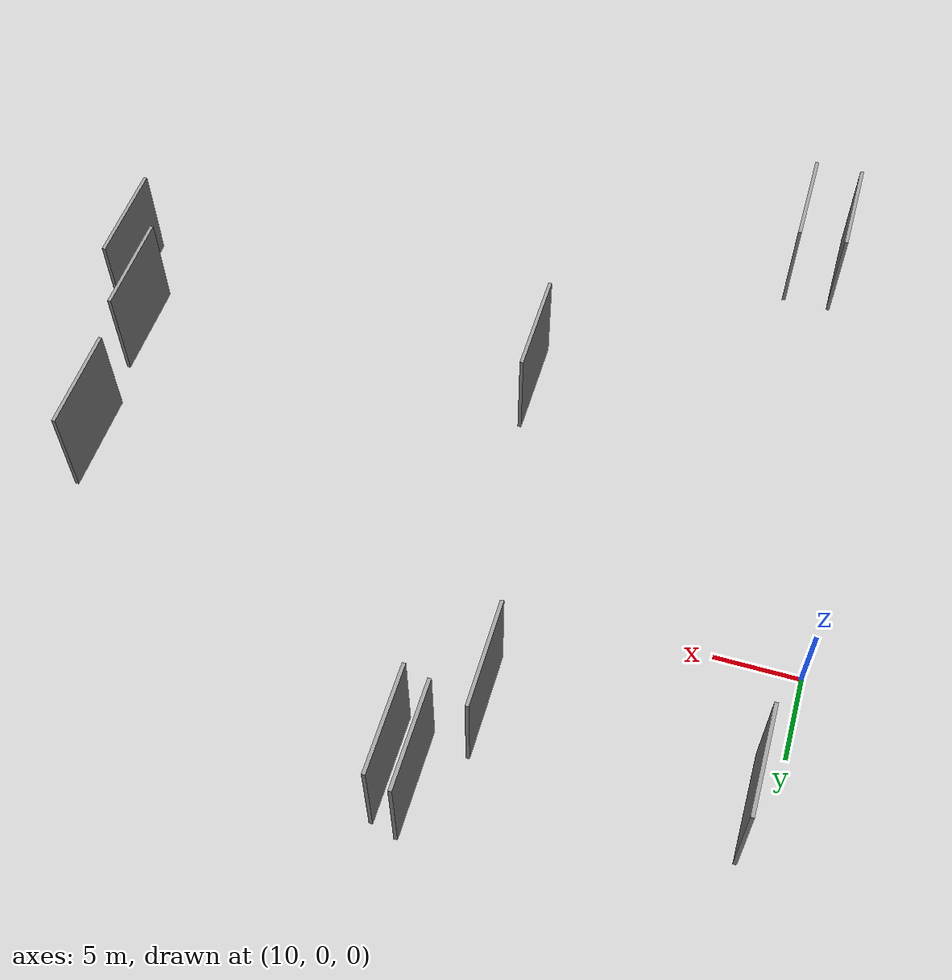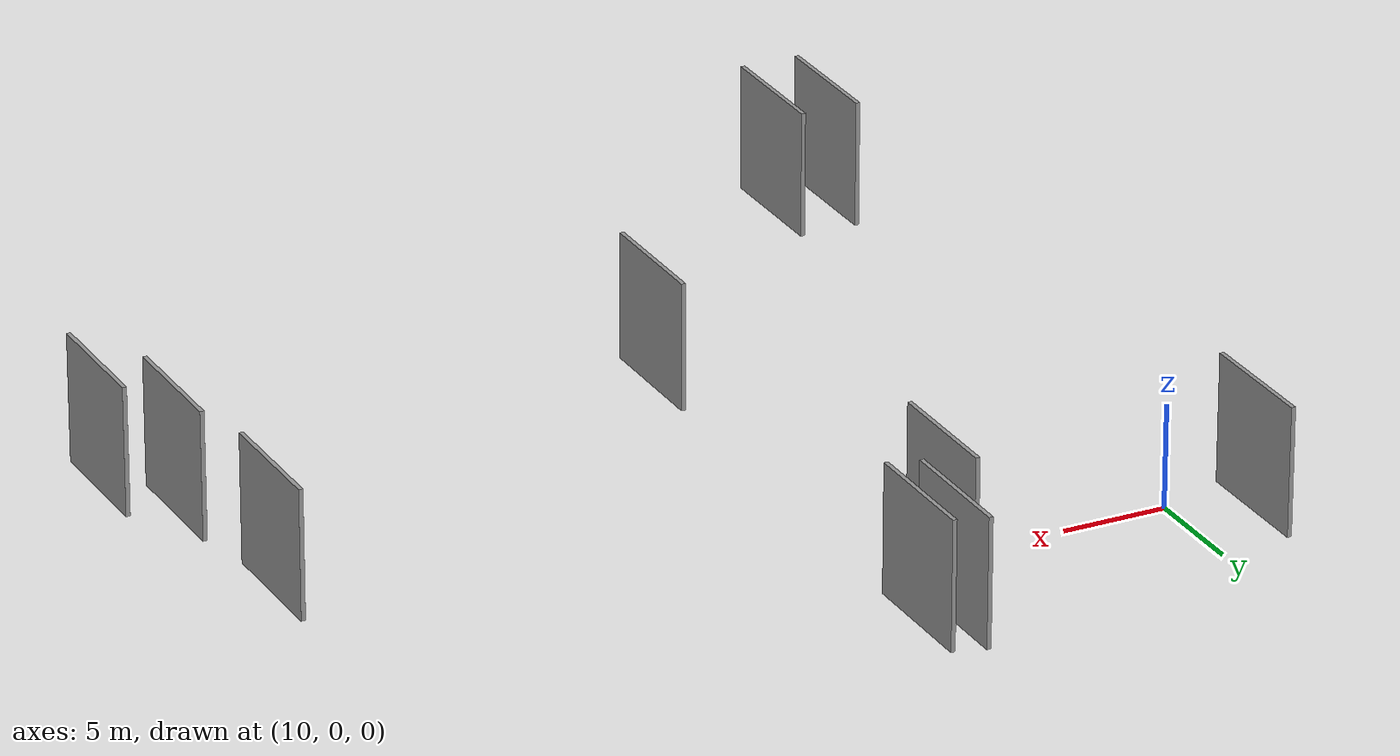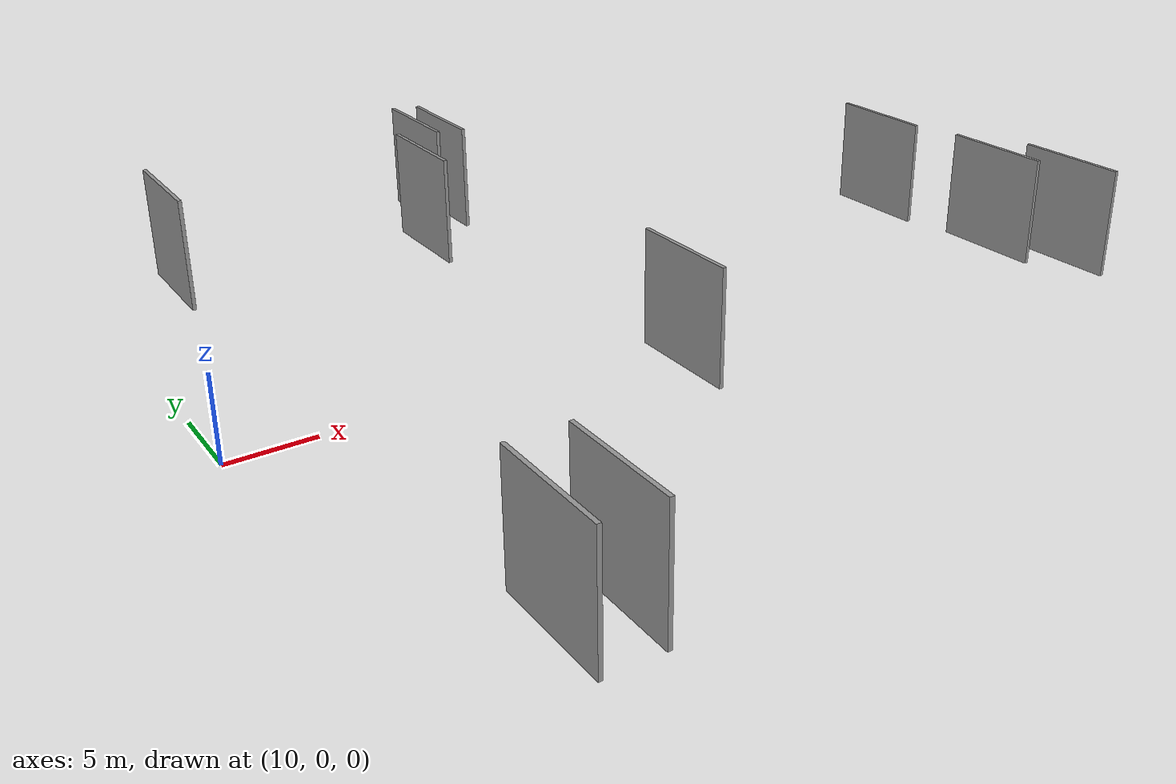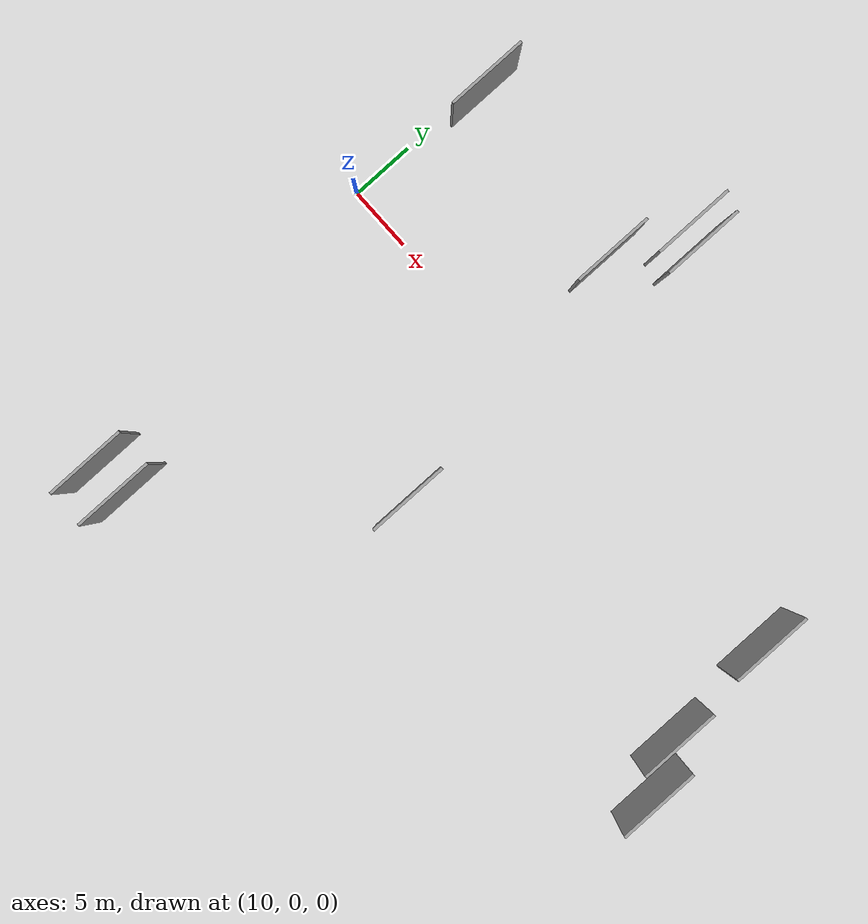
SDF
<sdf version="1.6">
 <world name="default">
  <scene>
   <sky><clouds><speed>12</speed></clouds></sky>
   <ambient>0.4 0.4 0.4 1</ambient>
   <background>0.7 0.7 0.7 1</background>
   <shadows>1</shadows>
  </scene>
  <gravity>0 0 -9.8066</gravity>
  <magnetic_field>6e-06 2.3e-05 -4.2e-05</magnetic_field>
  <physics default="0" name="default_physics" type="ode">
   <ode>
    <solver>
     <type>quick</type>
     <iters>10</iters>
     <sor>1.0</sor>
     <use_dynamic_moi_rescaling>0</use_dynamic_moi_rescaling>
    </solver>
    <constraints>
     <cfm>0</cfm>
     <erp>0.2</erp>
     <contact_max_correcting_vel>100</contact_max_correcting_vel>
     <contact_surface_layer>0.001</contact_surface_layer>
    </constraints>
   </ode>
   <max_step_size>0.004</max_step_size>
   <real_time_factor>1</real_time_factor>
   <real_time_update_rate>250</real_time_update_rate>
  </physics>
  <light name="sun" type="directional">
   <pose>0 0 10 0 0 0</pose>
   <diffuse>0.8 0.8 0.8 1</diffuse>
   <specular>0.2 0.2 0.2 1</specular>
   <attenuation>
    <range>1000</range>
    <constant>0.9</constant>
    <linear>0.01</linear>
    <quadratic>0.001</quadratic>
   </attenuation>
   <direction>-0.5 0.1 -0.9</direction>
  </light>
  <model name="grey_wall_1">
   <static>1</static>
   <pose>13.2446 -25.7643 5.0 0.000000 0.000000 1.570796</pose>
   <link name="link">
    <pose>0 0 3.00 0 0 0</pose>
    <collision name="collision"><geometry><box><size>6.00 0.2 6.00</size></box></geometry></collision>
    <visual name="visual">
     <cast_shadows>0</cast_shadows>
     <geometry><box><size>6.00 0.2 6.00</size></box></geometry>
     <material>
      <script>
       <uri>model://grey_wall/materials/scripts</uri>
       <uri>model://grey_wall/materials/textures</uri>
       <name>vrc/grey_wall</name>
      </script>
     </material>
    </visual>
   </link>
  </model>
  <model name="grey_wall_2">
   <static>1</static>
   <pose>28.9391 -11.8176 5.0 0.000000 0.000000 1.570796</pose>
   <link name="link">
    <pose>0 0 3.00 0 0 0</pose>
    <collision name="collision"><geometry><box><size>6.00 0.2 6.00</size></box></geometry></collision>
    <visual name="visual">
     <cast_shadows>0</cast_shadows>
     <geometry><box><size>6.00 0.2 6.00</size></box></geometry>
     <material>
      <script>
       <uri>model://grey_wall/materials/scripts</uri>
       <uri>model://grey_wall/materials/textures</uri>
       <name>vrc/grey_wall</name>
      </script>
     </material>
    </visual>
   </link>
  </model>
  <model name="grey_wall_3">
   <static>1</static>
   <pose>25.7731 8.8871 5.0 0.000000 0.000000 1.570796</pose>
   <link name="link">
    <pose>0 0 3.00 0 0 0</pose>
    <collision name="collision"><geometry><box><size>6.00 0.2 6.00</size></box></geometry></collision>
    <visual name="visual">
     <cast_shadows>0</cast_shadows>
     <geometry><box><size>6.00 0.2 6.00</size></box></geometry>
     <material>
      <script>
       <uri>model://grey_wall/materials/scripts</uri>
       <uri>model://grey_wall/materials/textures</uri>
       <name>vrc/grey_wall</name>
      </script>
     </material>
    </visual>
   </link>
  </model>
  <model name="grey_wall_4">
   <static>1</static>
   <pose>27.9129 13.9845 5.0 0.000000 0.000000 1.570796</pose>
   <link name="link">
    <pose>0 0 3.00 0 0 0</pose>
    <collision name="collision"><geometry><box><size>6.00 0.2 6.00</size></box></geometry></collision>
    <visual name="visual">
     <cast_shadows>0</cast_shadows>
     <geometry><box><size>6.00 0.2 6.00</size></box></geometry>
     <material>
      <script>
       <uri>model://grey_wall/materials/scripts</uri>
       <uri>model://grey_wall/materials/textures</uri>
       <name>vrc/grey_wall</name>
      </script>
     </material>
    </visual>
   </link>
  </model>
  <model name="grey_wall_5">
   <static>1</static>
   <pose>52.4821 -9.3801 5.0 0.000000 0.000000 1.570796</pose>
   <link name="link">
    <pose>0 0 3.00 0 0 0</pose>
    <collision name="collision"><geometry><box><size>6.00 0.2 6.00</size></box></geometry></collision>
    <visual name="visual">
     <cast_shadows>0</cast_shadows>
     <geometry><box><size>6.00 0.2 6.00</size></box></geometry>
     <material>
      <script>
       <uri>model://grey_wall/materials/scripts</uri>
       <uri>model://grey_wall/materials/textures</uri>
       <name>vrc/grey_wall</name>
      </script>
     </material>
    </visual>
   </link>
  </model>
  <model name="grey_wall_6">
   <static>1</static>
   <pose>54.4437 -12.9545 5.0 0.000000 0.000000 1.570796</pose>
   <link name="link">
    <pose>0 0 3.00 0 0 0</pose>
    <collision name="collision"><geometry><box><size>6.00 0.2 6.00</size></box></geometry></collision>
    <visual name="visual">
     <cast_shadows>0</cast_shadows>
     <geometry><box><size>6.00 0.2 6.00</size></box></geometry>
     <material>
      <script>
       <uri>model://grey_wall/materials/scripts</uri>
       <uri>model://grey_wall/materials/textures</uri>
       <name>vrc/grey_wall</name>
      </script>
     </material>
    </visual>
   </link>
  </model>
  <model name="grey_wall_7">
   <static>1</static>
   <pose>15.9778 -25.7833 5.0 0.000000 0.000000 1.570796</pose>
   <link name="link">
    <pose>0 0 3.00 0 0 0</pose>
    <collision name="collision"><geometry><box><size>6.00 0.2 6.00</size></box></geometry></collision>
    <visual name="visual">
     <cast_shadows>0</cast_shadows>
     <geometry><box><size>6.00 0.2 6.00</size></box></geometry>
     <material>
      <script>
       <uri>model://grey_wall/materials/scripts</uri>
       <uri>model://grey_wall/materials/textures</uri>
       <name>vrc/grey_wall</name>
      </script>
     </material>
    </visual>
   </link>
  </model>
  <model name="grey_wall_8">
   <static>1</static>
   <pose>29.3414 13.5582 5.0 0.000000 0.000000 1.570796</pose>
   <link name="link">
    <pose>0 0 3.00 0 0 0</pose>
    <collision name="collision"><geometry><box><size>6.00 0.2 6.00</size></box></geometry></collision>
    <visual name="visual">
     <cast_shadows>0</cast_shadows>
     <geometry><box><size>6.00 0.2 6.00</size></box></geometry>
     <material>
      <script>
       <uri>model://grey_wall/materials/scripts</uri>
       <uri>model://grey_wall/materials/textures</uri>
       <name>vrc/grey_wall</name>
      </script>
     </material>
    </visual>
   </link>
  </model>
  <model name="grey_wall_9">
   <static>1</static>
   <pose>51.8468 -0.8081 5.0 0.000000 0.000000 1.570796</pose>
   <link name="link">
    <pose>0 0 3.00 0 0 0</pose>
    <collision name="collision"><geometry><box><size>6.00 0.2 6.00</size></box></geometry></collision>
    <visual name="visual">
     <cast_shadows>0</cast_shadows>
     <geometry><box><size>6.00 0.2 6.00</size></box></geometry>
     <material>
      <script>
       <uri>model://grey_wall/materials/scripts</uri>
       <uri>model://grey_wall/materials/textures</uri>
       <name>vrc/grey_wall</name>
      </script>
     </material>
    </visual>
   </link>
  </model>
  <model name="grey_wall_10">
   <static>1</static>
   <pose>11.7650 10.4847 5.0 0.000000 0.000000 1.570796</pose>
   <link name="link">
    <pose>0 0 3.00 0 0 0</pose>
    <collision name="collision"><geometry><box><size>6.00 0.2 6.00</size></box></geometry></collision>
    <visual name="visual">
     <cast_shadows>0</cast_shadows>
     <geometry><box><size>6.00 0.2 6.00</size></box></geometry>
     <material>
      <script>
       <uri>model://grey_wall/materials/scripts</uri>
       <uri>model://grey_wall/materials/textures</uri>
       <name>vrc/grey_wall</name>
      </script>
     </material>
    </visual>
   </link>
  </model>
 </world>
</sdf>
